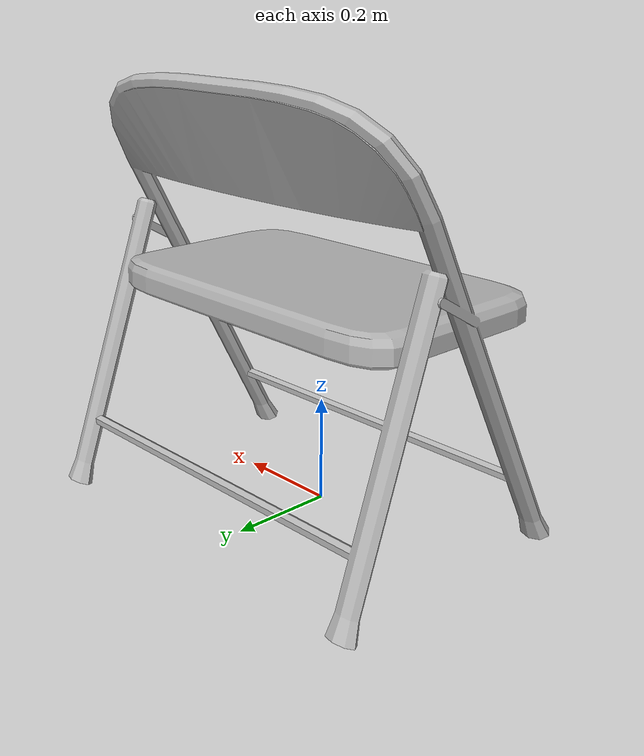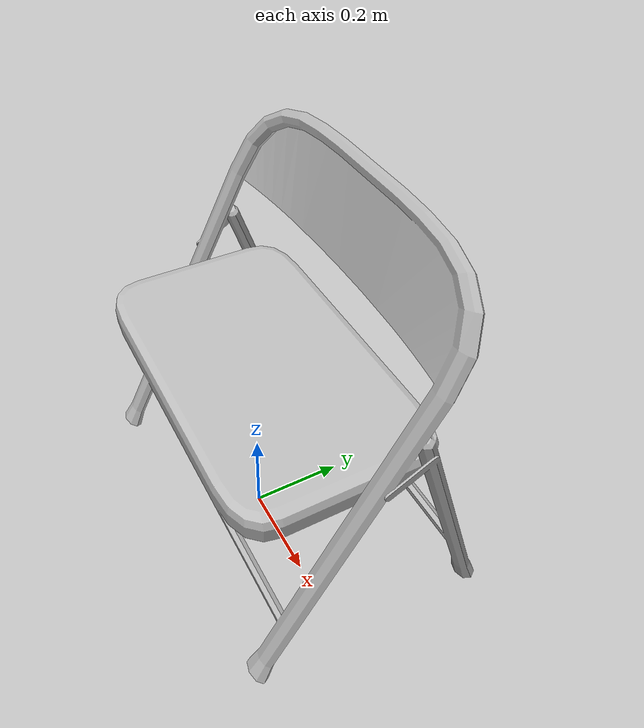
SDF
<?xml version="1.0"?>
<sdf version="1.6">
  <model name="foldable_chair">
    <static>true</static>
    <link name="base_link">
      <visual name="visual">
        <geometry>
          <mesh>
            <scale>0.15 0.1 0.1</scale>
            <uri>mesh/foldable_chair.dae</uri>
          </mesh>
        </geometry>
      </visual>
      <collision name="collision">
        <pose>0 0.05 0.4 0 0 0</pose>
        <geometry>
          <box>
            <size>0.5 0.5 0.8</size>
            <scale>0.15 .0.1 0.1</scale>
          </box>
        </geometry>
      </collision>
    </link>
  </model>
</sdf>
